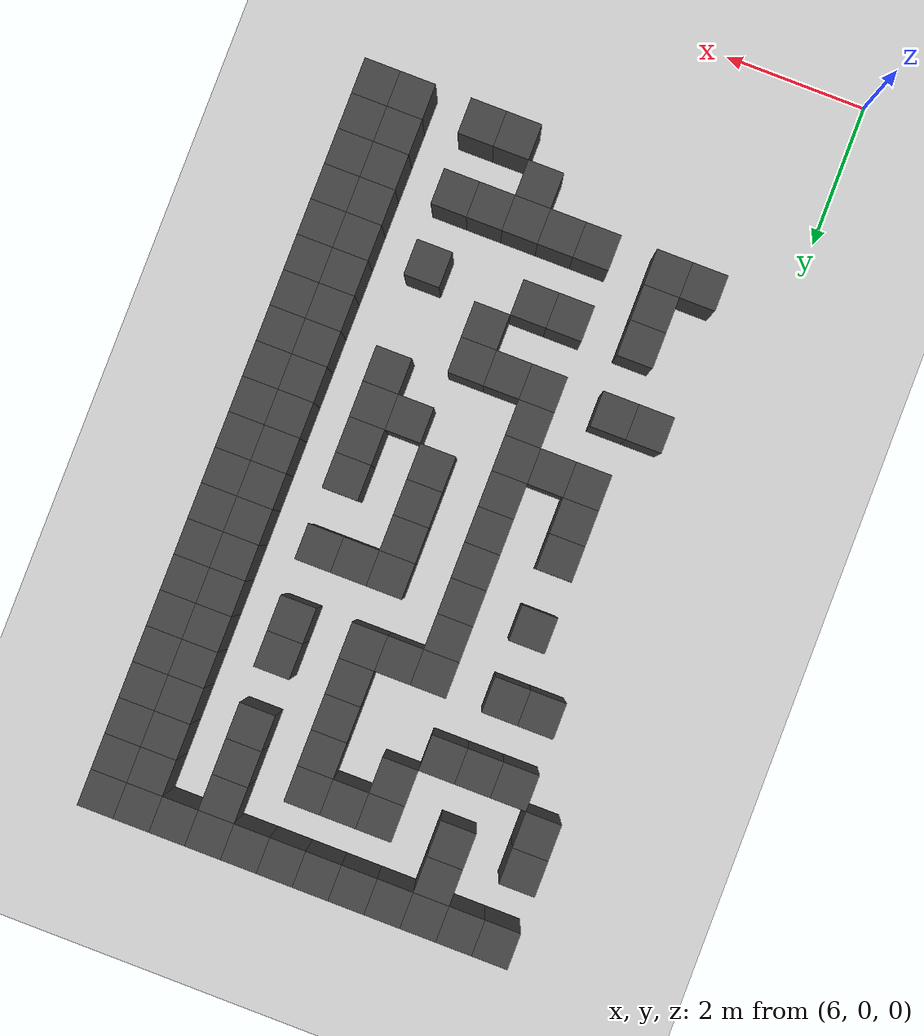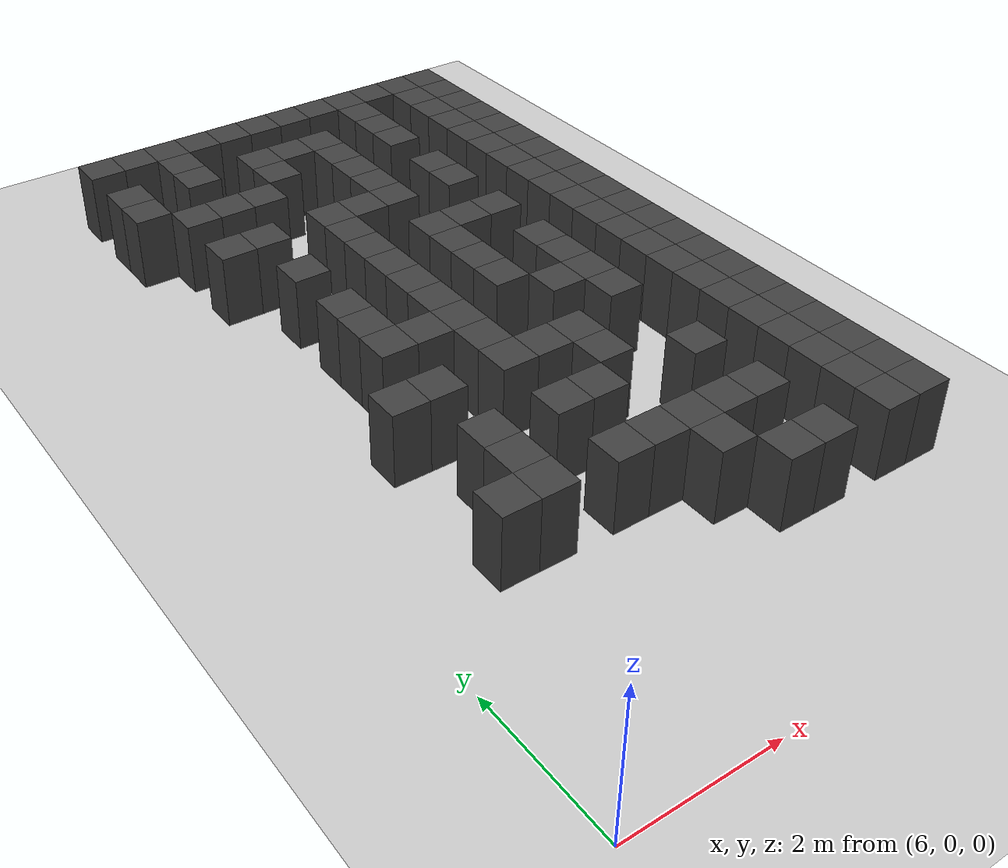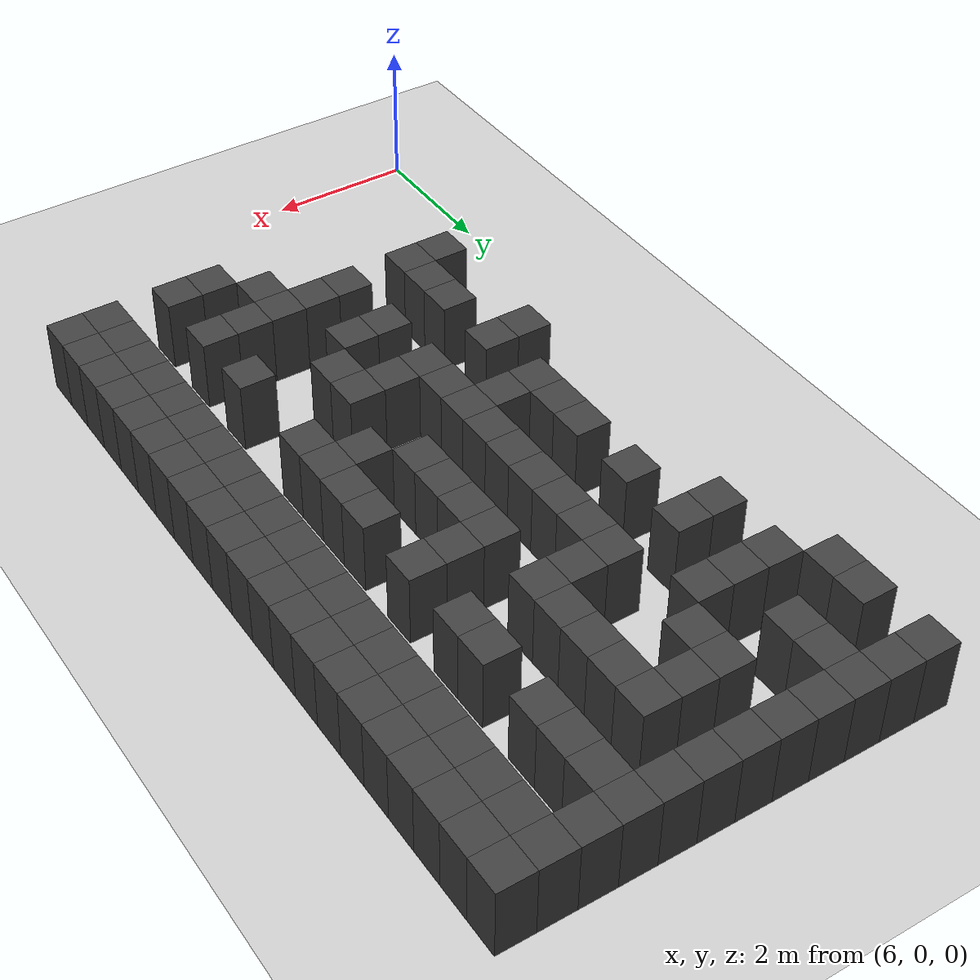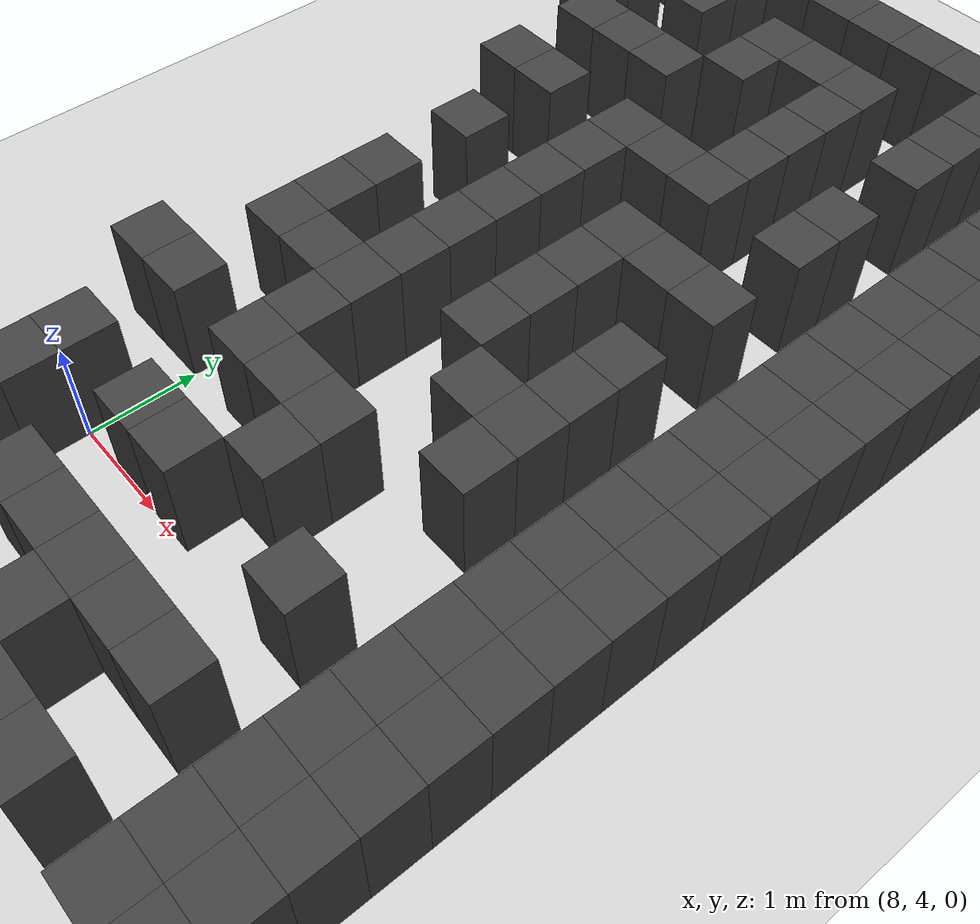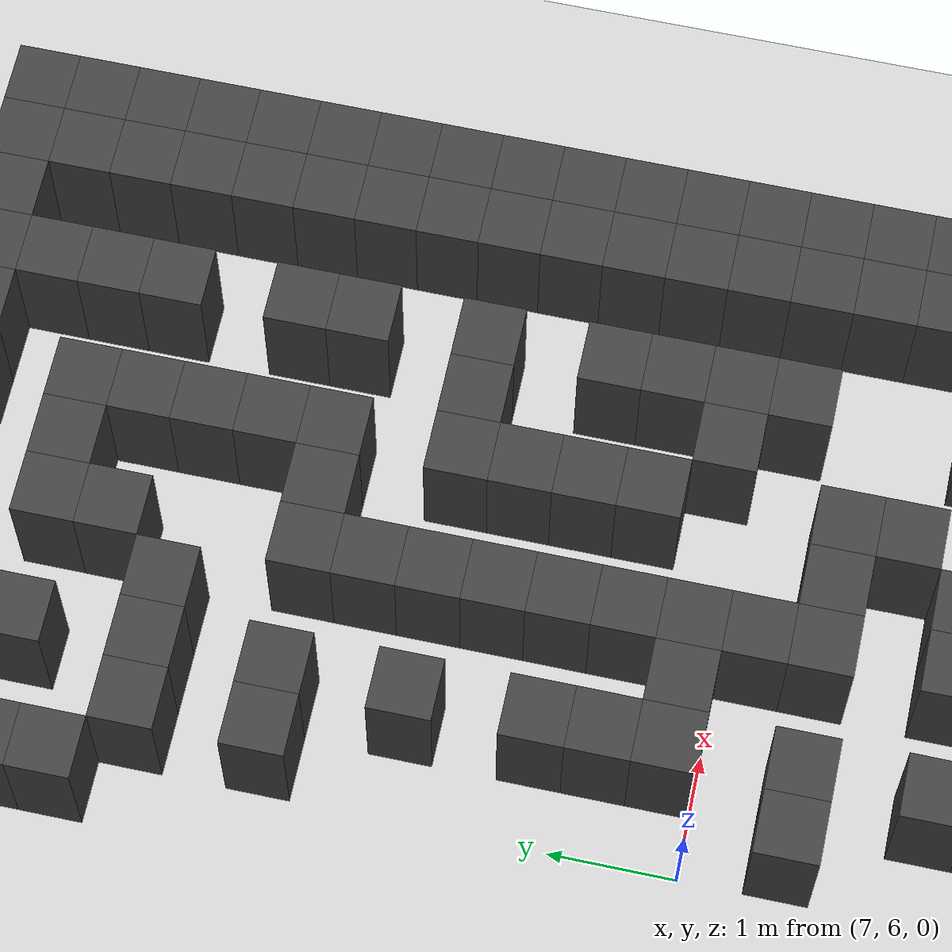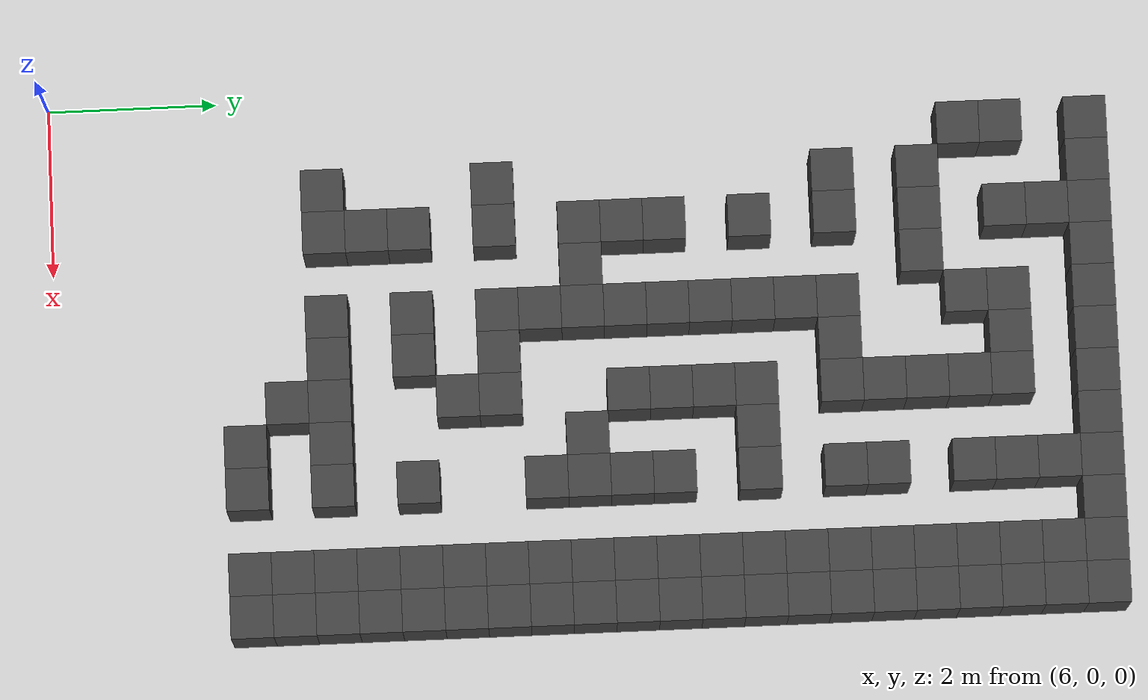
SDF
<sdf version="1.7">
 <world name="map_15168">
  <model name="ground_plane">
   <static>true</static>
   <link name="link">
    <collision name="collision">
     <geometry><plane><normal>0 0 1</normal><size>200 200</size></plane></geometry>
    </collision>
    <visual name="visual">
     <geometry><plane><normal>0 0 1</normal><size>200 200</size></plane></geometry>
     <material><ambient>0.8 0.8 0.8 1</ambient><diffuse>0.8 0.8 0.8 1</diffuse></material>
    </visual>
   </link>
  </model>
  <model name="maze_environment">
   <static>true</static>
   <link name="wall_38">
    <pose>6.750 12.250 0.500 0 0 0</pose>
    <collision name="col"><geometry><box><size>0.5 0.5 1.0</size></box></geometry></collision>
    <visual name="vis">
     <geometry><box><size>0.5 0.5 1.0</size></box></geometry>
     <material><ambient>0.15 0.15 0.15 1</ambient><diffuse>0.25 0.25 0.25 1</diffuse></material>
    </visual>
   </link>
   <link name="wall_39">
    <pose>7.250 12.250 0.500 0 0 0</pose>
    <collision name="col"><geometry><box><size>0.5 0.5 1.0</size></box></geometry></collision>
    <visual name="vis">
     <geometry><box><size>0.5 0.5 1.0</size></box></geometry>
     <material><ambient>0.15 0.15 0.15 1</ambient><diffuse>0.25 0.25 0.25 1</diffuse></material>
    </visual>
   </link>
   <link name="wall_40">
    <pose>7.750 12.250 0.500 0 0 0</pose>
    <collision name="col"><geometry><box><size>0.5 0.5 1.0</size></box></geometry></collision>
    <visual name="vis">
     <geometry><box><size>0.5 0.5 1.0</size></box></geometry>
     <material><ambient>0.15 0.15 0.15 1</ambient><diffuse>0.25 0.25 0.25 1</diffuse></material>
    </visual>
   </link>
   <link name="wall_41">
    <pose>8.250 12.250 0.500 0 0 0</pose>
    <collision name="col"><geometry><box><size>0.5 0.5 1.0</size></box></geometry></collision>
    <visual name="vis">
     <geometry><box><size>0.5 0.5 1.0</size></box></geometry>
     <material><ambient>0.15 0.15 0.15 1</ambient><diffuse>0.25 0.25 0.25 1</diffuse></material>
    </visual>
   </link>
   <link name="wall_42">
    <pose>8.750 12.250 0.500 0 0 0</pose>
    <collision name="col"><geometry><box><size>0.5 0.5 1.0</size></box></geometry></collision>
    <visual name="vis">
     <geometry><box><size>0.5 0.5 1.0</size></box></geometry>
     <material><ambient>0.15 0.15 0.15 1</ambient><diffuse>0.25 0.25 0.25 1</diffuse></material>
    </visual>
   </link>
   <link name="wall_43">
    <pose>9.250 12.250 0.500 0 0 0</pose>
    <collision name="col"><geometry><box><size>0.5 0.5 1.0</size></box></geometry></collision>
    <visual name="vis">
     <geometry><box><size>0.5 0.5 1.0</size></box></geometry>
     <material><ambient>0.15 0.15 0.15 1</ambient><diffuse>0.25 0.25 0.25 1</diffuse></material>
    </visual>
   </link>
   <link name="wall_44">
    <pose>9.750 12.250 0.500 0 0 0</pose>
    <collision name="col"><geometry><box><size>0.5 0.5 1.0</size></box></geometry></collision>
    <visual name="vis">
     <geometry><box><size>0.5 0.5 1.0</size></box></geometry>
     <material><ambient>0.15 0.15 0.15 1</ambient><diffuse>0.25 0.25 0.25 1</diffuse></material>
    </visual>
   </link>
   <link name="wall_45">
    <pose>10.250 12.250 0.500 0 0 0</pose>
    <collision name="col"><geometry><box><size>0.5 0.5 1.0</size></box></geometry></collision>
    <visual name="vis">
     <geometry><box><size>0.5 0.5 1.0</size></box></geometry>
     <material><ambient>0.15 0.15 0.15 1</ambient><diffuse>0.25 0.25 0.25 1</diffuse></material>
    </visual>
   </link>
   <link name="wall_46">
    <pose>10.750 12.250 0.500 0 0 0</pose>
    <collision name="col"><geometry><box><size>0.5 0.5 1.0</size></box></geometry></collision>
    <visual name="vis">
     <geometry><box><size>0.5 0.5 1.0</size></box></geometry>
     <material><ambient>0.15 0.15 0.15 1</ambient><diffuse>0.25 0.25 0.25 1</diffuse></material>
    </visual>
   </link>
   <link name="wall_47">
    <pose>11.250 12.250 0.500 0 0 0</pose>
    <collision name="col"><geometry><box><size>0.5 0.5 1.0</size></box></geometry></collision>
    <visual name="vis">
     <geometry><box><size>0.5 0.5 1.0</size></box></geometry>
     <material><ambient>0.15 0.15 0.15 1</ambient><diffuse>0.25 0.25 0.25 1</diffuse></material>
    </visual>
   </link>
   <link name="wall_48">
    <pose>11.750 12.250 0.500 0 0 0</pose>
    <collision name="col"><geometry><box><size>0.5 0.5 1.0</size></box></geometry></collision>
    <visual name="vis">
     <geometry><box><size>0.5 0.5 1.0</size></box></geometry>
     <material><ambient>0.15 0.15 0.15 1</ambient><diffuse>0.25 0.25 0.25 1</diffuse></material>
    </visual>
   </link>
   <link name="wall_49">
    <pose>12.250 12.250 0.500 0 0 0</pose>
    <collision name="col"><geometry><box><size>0.5 0.5 1.0</size></box></geometry></collision>
    <visual name="vis">
     <geometry><box><size>0.5 0.5 1.0</size></box></geometry>
     <material><ambient>0.15 0.15 0.15 1</ambient><diffuse>0.25 0.25 0.25 1</diffuse></material>
    </visual>
   </link>
   <link name="wall_56">
    <pose>7.750 11.750 0.500 0 0 0</pose>
    <collision name="col"><geometry><box><size>0.5 0.5 1.0</size></box></geometry></collision>
    <visual name="vis">
     <geometry><box><size>0.5 0.5 1.0</size></box></geometry>
     <material><ambient>0.15 0.15 0.15 1</ambient><diffuse>0.25 0.25 0.25 1</diffuse></material>
    </visual>
   </link>
   <link name="wall_57">
    <pose>10.750 11.750 0.500 0 0 0</pose>
    <collision name="col"><geometry><box><size>0.5 0.5 1.0</size></box></geometry></collision>
    <visual name="vis">
     <geometry><box><size>0.5 0.5 1.0</size></box></geometry>
     <material><ambient>0.15 0.15 0.15 1</ambient><diffuse>0.25 0.25 0.25 1</diffuse></material>
    </visual>
   </link>
   <link name="wall_58">
    <pose>11.750 11.750 0.500 0 0 0</pose>
    <collision name="col"><geometry><box><size>0.5 0.5 1.0</size></box></geometry></collision>
    <visual name="vis">
     <geometry><box><size>0.5 0.5 1.0</size></box></geometry>
     <material><ambient>0.15 0.15 0.15 1</ambient><diffuse>0.25 0.25 0.25 1</diffuse></material>
    </visual>
   </link>
   <link name="wall_59">
    <pose>12.250 11.750 0.500 0 0 0</pose>
    <collision name="col"><geometry><box><size>0.5 0.5 1.0</size></box></geometry></collision>
    <visual name="vis">
     <geometry><box><size>0.5 0.5 1.0</size></box></geometry>
     <material><ambient>0.15 0.15 0.15 1</ambient><diffuse>0.25 0.25 0.25 1</diffuse></material>
    </visual>
   </link>
   <link name="wall_83">
    <pose>6.750 11.250 0.500 0 0 0</pose>
    <collision name="col"><geometry><box><size>0.5 0.5 1.0</size></box></geometry></collision>
    <visual name="vis">
     <geometry><box><size>0.5 0.5 1.0</size></box></geometry>
     <material><ambient>0.15 0.15 0.15 1</ambient><diffuse>0.25 0.25 0.25 1</diffuse></material>
    </visual>
   </link>
   <link name="wall_84">
    <pose>7.750 11.250 0.500 0 0 0</pose>
    <collision name="col"><geometry><box><size>0.5 0.5 1.0</size></box></geometry></collision>
    <visual name="vis">
     <geometry><box><size>0.5 0.5 1.0</size></box></geometry>
     <material><ambient>0.15 0.15 0.15 1</ambient><diffuse>0.25 0.25 0.25 1</diffuse></material>
    </visual>
   </link>
   <link name="wall_85">
    <pose>8.750 11.250 0.500 0 0 0</pose>
    <collision name="col"><geometry><box><size>0.5 0.5 1.0</size></box></geometry></collision>
    <visual name="vis">
     <geometry><box><size>0.5 0.5 1.0</size></box></geometry>
     <material><ambient>0.15 0.15 0.15 1</ambient><diffuse>0.25 0.25 0.25 1</diffuse></material>
    </visual>
   </link>
   <link name="wall_86">
    <pose>9.250 11.250 0.500 0 0 0</pose>
    <collision name="col"><geometry><box><size>0.5 0.5 1.0</size></box></geometry></collision>
    <visual name="vis">
     <geometry><box><size>0.5 0.5 1.0</size></box></geometry>
     <material><ambient>0.15 0.15 0.15 1</ambient><diffuse>0.25 0.25 0.25 1</diffuse></material>
    </visual>
   </link>
   <link name="wall_87">
    <pose>9.750 11.250 0.500 0 0 0</pose>
    <collision name="col"><geometry><box><size>0.5 0.5 1.0</size></box></geometry></collision>
    <visual name="vis">
     <geometry><box><size>0.5 0.5 1.0</size></box></geometry>
     <material><ambient>0.15 0.15 0.15 1</ambient><diffuse>0.25 0.25 0.25 1</diffuse></material>
    </visual>
   </link>
   <link name="wall_88">
    <pose>10.750 11.250 0.500 0 0 0</pose>
    <collision name="col"><geometry><box><size>0.5 0.5 1.0</size></box></geometry></collision>
    <visual name="vis">
     <geometry><box><size>0.5 0.5 1.0</size></box></geometry>
     <material><ambient>0.15 0.15 0.15 1</ambient><diffuse>0.25 0.25 0.25 1</diffuse></material>
    </visual>
   </link>
   <link name="wall_89">
    <pose>11.750 11.250 0.500 0 0 0</pose>
    <collision name="col"><geometry><box><size>0.5 0.5 1.0</size></box></geometry></collision>
    <visual name="vis">
     <geometry><box><size>0.5 0.5 1.0</size></box></geometry>
     <material><ambient>0.15 0.15 0.15 1</ambient><diffuse>0.25 0.25 0.25 1</diffuse></material>
    </visual>
   </link>
   <link name="wall_90">
    <pose>12.250 11.250 0.500 0 0 0</pose>
    <collision name="col"><geometry><box><size>0.5 0.5 1.0</size></box></geometry></collision>
    <visual name="vis">
     <geometry><box><size>0.5 0.5 1.0</size></box></geometry>
     <material><ambient>0.15 0.15 0.15 1</ambient><diffuse>0.25 0.25 0.25 1</diffuse></material>
    </visual>
   </link>
   <link name="wall_99">
    <pose>6.750 10.750 0.500 0 0 0</pose>
    <collision name="col"><geometry><box><size>0.5 0.5 1.0</size></box></geometry></collision>
    <visual name="vis">
     <geometry><box><size>0.5 0.5 1.0</size></box></geometry>
     <material><ambient>0.15 0.15 0.15 1</ambient><diffuse>0.25 0.25 0.25 1</diffuse></material>
    </visual>
   </link>
   <link name="wall_100">
    <pose>8.750 10.750 0.500 0 0 0</pose>
    <collision name="col"><geometry><box><size>0.5 0.5 1.0</size></box></geometry></collision>
    <visual name="vis">
     <geometry><box><size>0.5 0.5 1.0</size></box></geometry>
     <material><ambient>0.15 0.15 0.15 1</ambient><diffuse>0.25 0.25 0.25 1</diffuse></material>
    </visual>
   </link>
   <link name="wall_101">
    <pose>9.750 10.750 0.500 0 0 0</pose>
    <collision name="col"><geometry><box><size>0.5 0.5 1.0</size></box></geometry></collision>
    <visual name="vis">
     <geometry><box><size>0.5 0.5 1.0</size></box></geometry>
     <material><ambient>0.15 0.15 0.15 1</ambient><diffuse>0.25 0.25 0.25 1</diffuse></material>
    </visual>
   </link>
   <link name="wall_102">
    <pose>10.750 10.750 0.500 0 0 0</pose>
    <collision name="col"><geometry><box><size>0.5 0.5 1.0</size></box></geometry></collision>
    <visual name="vis">
     <geometry><box><size>0.5 0.5 1.0</size></box></geometry>
     <material><ambient>0.15 0.15 0.15 1</ambient><diffuse>0.25 0.25 0.25 1</diffuse></material>
    </visual>
   </link>
   <link name="wall_103">
    <pose>11.750 10.750 0.500 0 0 0</pose>
    <collision name="col"><geometry><box><size>0.5 0.5 1.0</size></box></geometry></collision>
    <visual name="vis">
     <geometry><box><size>0.5 0.5 1.0</size></box></geometry>
     <material><ambient>0.15 0.15 0.15 1</ambient><diffuse>0.25 0.25 0.25 1</diffuse></material>
    </visual>
   </link>
   <link name="wall_104">
    <pose>12.250 10.750 0.500 0 0 0</pose>
    <collision name="col"><geometry><box><size>0.5 0.5 1.0</size></box></geometry></collision>
    <visual name="vis">
     <geometry><box><size>0.5 0.5 1.0</size></box></geometry>
     <material><ambient>0.15 0.15 0.15 1</ambient><diffuse>0.25 0.25 0.25 1</diffuse></material>
    </visual>
   </link>
   <link name="wall_133">
    <pose>7.250 10.250 0.500 0 0 0</pose>
    <collision name="col"><geometry><box><size>0.5 0.5 1.0</size></box></geometry></collision>
    <visual name="vis">
     <geometry><box><size>0.5 0.5 1.0</size></box></geometry>
     <material><ambient>0.15 0.15 0.15 1</ambient><diffuse>0.25 0.25 0.25 1</diffuse></material>
    </visual>
   </link>
   <link name="wall_134">
    <pose>7.750 10.250 0.500 0 0 0</pose>
    <collision name="col"><geometry><box><size>0.5 0.5 1.0</size></box></geometry></collision>
    <visual name="vis">
     <geometry><box><size>0.5 0.5 1.0</size></box></geometry>
     <material><ambient>0.15 0.15 0.15 1</ambient><diffuse>0.25 0.25 0.25 1</diffuse></material>
    </visual>
   </link>
   <link name="wall_135">
    <pose>8.250 10.250 0.500 0 0 0</pose>
    <collision name="col"><geometry><box><size>0.5 0.5 1.0</size></box></geometry></collision>
    <visual name="vis">
     <geometry><box><size>0.5 0.5 1.0</size></box></geometry>
     <material><ambient>0.15 0.15 0.15 1</ambient><diffuse>0.25 0.25 0.25 1</diffuse></material>
    </visual>
   </link>
   <link name="wall_136">
    <pose>9.750 10.250 0.500 0 0 0</pose>
    <collision name="col"><geometry><box><size>0.5 0.5 1.0</size></box></geometry></collision>
    <visual name="vis">
     <geometry><box><size>0.5 0.5 1.0</size></box></geometry>
     <material><ambient>0.15 0.15 0.15 1</ambient><diffuse>0.25 0.25 0.25 1</diffuse></material>
    </visual>
   </link>
   <link name="wall_137">
    <pose>11.750 10.250 0.500 0 0 0</pose>
    <collision name="col"><geometry><box><size>0.5 0.5 1.0</size></box></geometry></collision>
    <visual name="vis">
     <geometry><box><size>0.5 0.5 1.0</size></box></geometry>
     <material><ambient>0.15 0.15 0.15 1</ambient><diffuse>0.25 0.25 0.25 1</diffuse></material>
    </visual>
   </link>
   <link name="wall_138">
    <pose>12.250 10.250 0.500 0 0 0</pose>
    <collision name="col"><geometry><box><size>0.5 0.5 1.0</size></box></geometry></collision>
    <visual name="vis">
     <geometry><box><size>0.5 0.5 1.0</size></box></geometry>
     <material><ambient>0.15 0.15 0.15 1</ambient><diffuse>0.25 0.25 0.25 1</diffuse></material>
    </visual>
   </link>
   <link name="wall_148">
    <pose>9.750 9.750 0.500 0 0 0</pose>
    <collision name="col"><geometry><box><size>0.5 0.5 1.0</size></box></geometry></collision>
    <visual name="vis">
     <geometry><box><size>0.5 0.5 1.0</size></box></geometry>
     <material><ambient>0.15 0.15 0.15 1</ambient><diffuse>0.25 0.25 0.25 1</diffuse></material>
    </visual>
   </link>
   <link name="wall_149">
    <pose>10.750 9.750 0.500 0 0 0</pose>
    <collision name="col"><geometry><box><size>0.5 0.5 1.0</size></box></geometry></collision>
    <visual name="vis">
     <geometry><box><size>0.5 0.5 1.0</size></box></geometry>
     <material><ambient>0.15 0.15 0.15 1</ambient><diffuse>0.25 0.25 0.25 1</diffuse></material>
    </visual>
   </link>
   <link name="wall_150">
    <pose>11.750 9.750 0.500 0 0 0</pose>
    <collision name="col"><geometry><box><size>0.5 0.5 1.0</size></box></geometry></collision>
    <visual name="vis">
     <geometry><box><size>0.5 0.5 1.0</size></box></geometry>
     <material><ambient>0.15 0.15 0.15 1</ambient><diffuse>0.25 0.25 0.25 1</diffuse></material>
    </visual>
   </link>
   <link name="wall_151">
    <pose>12.250 9.750 0.500 0 0 0</pose>
    <collision name="col"><geometry><box><size>0.5 0.5 1.0</size></box></geometry></collision>
    <visual name="vis">
     <geometry><box><size>0.5 0.5 1.0</size></box></geometry>
     <material><ambient>0.15 0.15 0.15 1</ambient><diffuse>0.25 0.25 0.25 1</diffuse></material>
    </visual>
   </link>
   <link name="wall_181">
    <pose>7.250 9.250 0.500 0 0 0</pose>
    <collision name="col"><geometry><box><size>0.5 0.5 1.0</size></box></geometry></collision>
    <visual name="vis">
     <geometry><box><size>0.5 0.5 1.0</size></box></geometry>
     <material><ambient>0.15 0.15 0.15 1</ambient><diffuse>0.25 0.25 0.25 1</diffuse></material>
    </visual>
   </link>
   <link name="wall_182">
    <pose>7.750 9.250 0.500 0 0 0</pose>
    <collision name="col"><geometry><box><size>0.5 0.5 1.0</size></box></geometry></collision>
    <visual name="vis">
     <geometry><box><size>0.5 0.5 1.0</size></box></geometry>
     <material><ambient>0.15 0.15 0.15 1</ambient><diffuse>0.25 0.25 0.25 1</diffuse></material>
    </visual>
   </link>
   <link name="wall_183">
    <pose>8.750 9.250 0.500 0 0 0</pose>
    <collision name="col"><geometry><box><size>0.5 0.5 1.0</size></box></geometry></collision>
    <visual name="vis">
     <geometry><box><size>0.5 0.5 1.0</size></box></geometry>
     <material><ambient>0.15 0.15 0.15 1</ambient><diffuse>0.25 0.25 0.25 1</diffuse></material>
    </visual>
   </link>
   <link name="wall_184">
    <pose>9.250 9.250 0.500 0 0 0</pose>
    <collision name="col"><geometry><box><size>0.5 0.5 1.0</size></box></geometry></collision>
    <visual name="vis">
     <geometry><box><size>0.5 0.5 1.0</size></box></geometry>
     <material><ambient>0.15 0.15 0.15 1</ambient><diffuse>0.25 0.25 0.25 1</diffuse></material>
    </visual>
   </link>
   <link name="wall_185">
    <pose>9.750 9.250 0.500 0 0 0</pose>
    <collision name="col"><geometry><box><size>0.5 0.5 1.0</size></box></geometry></collision>
    <visual name="vis">
     <geometry><box><size>0.5 0.5 1.0</size></box></geometry>
     <material><ambient>0.15 0.15 0.15 1</ambient><diffuse>0.25 0.25 0.25 1</diffuse></material>
    </visual>
   </link>
   <link name="wall_186">
    <pose>10.750 9.250 0.500 0 0 0</pose>
    <collision name="col"><geometry><box><size>0.5 0.5 1.0</size></box></geometry></collision>
    <visual name="vis">
     <geometry><box><size>0.5 0.5 1.0</size></box></geometry>
     <material><ambient>0.15 0.15 0.15 1</ambient><diffuse>0.25 0.25 0.25 1</diffuse></material>
    </visual>
   </link>
   <link name="wall_187">
    <pose>11.750 9.250 0.500 0 0 0</pose>
    <collision name="col"><geometry><box><size>0.5 0.5 1.0</size></box></geometry></collision>
    <visual name="vis">
     <geometry><box><size>0.5 0.5 1.0</size></box></geometry>
     <material><ambient>0.15 0.15 0.15 1</ambient><diffuse>0.25 0.25 0.25 1</diffuse></material>
    </visual>
   </link>
   <link name="wall_188">
    <pose>12.250 9.250 0.500 0 0 0</pose>
    <collision name="col"><geometry><box><size>0.5 0.5 1.0</size></box></geometry></collision>
    <visual name="vis">
     <geometry><box><size>0.5 0.5 1.0</size></box></geometry>
     <material><ambient>0.15 0.15 0.15 1</ambient><diffuse>0.25 0.25 0.25 1</diffuse></material>
    </visual>
   </link>
   <link name="wall_197">
    <pose>8.750 8.750 0.500 0 0 0</pose>
    <collision name="col"><geometry><box><size>0.5 0.5 1.0</size></box></geometry></collision>
    <visual name="vis">
     <geometry><box><size>0.5 0.5 1.0</size></box></geometry>
     <material><ambient>0.15 0.15 0.15 1</ambient><diffuse>0.25 0.25 0.25 1</diffuse></material>
    </visual>
   </link>
   <link name="wall_198">
    <pose>11.750 8.750 0.500 0 0 0</pose>
    <collision name="col"><geometry><box><size>0.5 0.5 1.0</size></box></geometry></collision>
    <visual name="vis">
     <geometry><box><size>0.5 0.5 1.0</size></box></geometry>
     <material><ambient>0.15 0.15 0.15 1</ambient><diffuse>0.25 0.25 0.25 1</diffuse></material>
    </visual>
   </link>
   <link name="wall_199">
    <pose>12.250 8.750 0.500 0 0 0</pose>
    <collision name="col"><geometry><box><size>0.5 0.5 1.0</size></box></geometry></collision>
    <visual name="vis">
     <geometry><box><size>0.5 0.5 1.0</size></box></geometry>
     <material><ambient>0.15 0.15 0.15 1</ambient><diffuse>0.25 0.25 0.25 1</diffuse></material>
    </visual>
   </link>
   <link name="wall_225">
    <pose>7.750 8.250 0.500 0 0 0</pose>
    <collision name="col"><geometry><box><size>0.5 0.5 1.0</size></box></geometry></collision>
    <visual name="vis">
     <geometry><box><size>0.5 0.5 1.0</size></box></geometry>
     <material><ambient>0.15 0.15 0.15 1</ambient><diffuse>0.25 0.25 0.25 1</diffuse></material>
    </visual>
   </link>
   <link name="wall_226">
    <pose>8.750 8.250 0.500 0 0 0</pose>
    <collision name="col"><geometry><box><size>0.5 0.5 1.0</size></box></geometry></collision>
    <visual name="vis">
     <geometry><box><size>0.5 0.5 1.0</size></box></geometry>
     <material><ambient>0.15 0.15 0.15 1</ambient><diffuse>0.25 0.25 0.25 1</diffuse></material>
    </visual>
   </link>
   <link name="wall_227">
    <pose>9.750 8.250 0.500 0 0 0</pose>
    <collision name="col"><geometry><box><size>0.5 0.5 1.0</size></box></geometry></collision>
    <visual name="vis">
     <geometry><box><size>0.5 0.5 1.0</size></box></geometry>
     <material><ambient>0.15 0.15 0.15 1</ambient><diffuse>0.25 0.25 0.25 1</diffuse></material>
    </visual>
   </link>
   <link name="wall_228">
    <pose>10.250 8.250 0.500 0 0 0</pose>
    <collision name="col"><geometry><box><size>0.5 0.5 1.0</size></box></geometry></collision>
    <visual name="vis">
     <geometry><box><size>0.5 0.5 1.0</size></box></geometry>
     <material><ambient>0.15 0.15 0.15 1</ambient><diffuse>0.25 0.25 0.25 1</diffuse></material>
    </visual>
   </link>
   <link name="wall_229">
    <pose>10.750 8.250 0.500 0 0 0</pose>
    <collision name="col"><geometry><box><size>0.5 0.5 1.0</size></box></geometry></collision>
    <visual name="vis">
     <geometry><box><size>0.5 0.5 1.0</size></box></geometry>
     <material><ambient>0.15 0.15 0.15 1</ambient><diffuse>0.25 0.25 0.25 1</diffuse></material>
    </visual>
   </link>
   <link name="wall_230">
    <pose>11.750 8.250 0.500 0 0 0</pose>
    <collision name="col"><geometry><box><size>0.5 0.5 1.0</size></box></geometry></collision>
    <visual name="vis">
     <geometry><box><size>0.5 0.5 1.0</size></box></geometry>
     <material><ambient>0.15 0.15 0.15 1</ambient><diffuse>0.25 0.25 0.25 1</diffuse></material>
    </visual>
   </link>
   <link name="wall_231">
    <pose>12.250 8.250 0.500 0 0 0</pose>
    <collision name="col"><geometry><box><size>0.5 0.5 1.0</size></box></geometry></collision>
    <visual name="vis">
     <geometry><box><size>0.5 0.5 1.0</size></box></geometry>
     <material><ambient>0.15 0.15 0.15 1</ambient><diffuse>0.25 0.25 0.25 1</diffuse></material>
    </visual>
   </link>
   <link name="wall_241">
    <pose>8.750 7.750 0.500 0 0 0</pose>
    <collision name="col"><geometry><box><size>0.5 0.5 1.0</size></box></geometry></collision>
    <visual name="vis">
     <geometry><box><size>0.5 0.5 1.0</size></box></geometry>
     <material><ambient>0.15 0.15 0.15 1</ambient><diffuse>0.25 0.25 0.25 1</diffuse></material>
    </visual>
   </link>
   <link name="wall_242">
    <pose>9.750 7.750 0.500 0 0 0</pose>
    <collision name="col"><geometry><box><size>0.5 0.5 1.0</size></box></geometry></collision>
    <visual name="vis">
     <geometry><box><size>0.5 0.5 1.0</size></box></geometry>
     <material><ambient>0.15 0.15 0.15 1</ambient><diffuse>0.25 0.25 0.25 1</diffuse></material>
    </visual>
   </link>
   <link name="wall_243">
    <pose>11.750 7.750 0.500 0 0 0</pose>
    <collision name="col"><geometry><box><size>0.5 0.5 1.0</size></box></geometry></collision>
    <visual name="vis">
     <geometry><box><size>0.5 0.5 1.0</size></box></geometry>
     <material><ambient>0.15 0.15 0.15 1</ambient><diffuse>0.25 0.25 0.25 1</diffuse></material>
    </visual>
   </link>
   <link name="wall_244">
    <pose>12.250 7.750 0.500 0 0 0</pose>
    <collision name="col"><geometry><box><size>0.5 0.5 1.0</size></box></geometry></collision>
    <visual name="vis">
     <geometry><box><size>0.5 0.5 1.0</size></box></geometry>
     <material><ambient>0.15 0.15 0.15 1</ambient><diffuse>0.25 0.25 0.25 1</diffuse></material>
    </visual>
   </link>
   <link name="wall_271">
    <pose>7.750 7.250 0.500 0 0 0</pose>
    <collision name="col"><geometry><box><size>0.5 0.5 1.0</size></box></geometry></collision>
    <visual name="vis">
     <geometry><box><size>0.5 0.5 1.0</size></box></geometry>
     <material><ambient>0.15 0.15 0.15 1</ambient><diffuse>0.25 0.25 0.25 1</diffuse></material>
    </visual>
   </link>
   <link name="wall_272">
    <pose>8.750 7.250 0.500 0 0 0</pose>
    <collision name="col"><geometry><box><size>0.5 0.5 1.0</size></box></geometry></collision>
    <visual name="vis">
     <geometry><box><size>0.5 0.5 1.0</size></box></geometry>
     <material><ambient>0.15 0.15 0.15 1</ambient><diffuse>0.25 0.25 0.25 1</diffuse></material>
    </visual>
   </link>
   <link name="wall_273">
    <pose>9.750 7.250 0.500 0 0 0</pose>
    <collision name="col"><geometry><box><size>0.5 0.5 1.0</size></box></geometry></collision>
    <visual name="vis">
     <geometry><box><size>0.5 0.5 1.0</size></box></geometry>
     <material><ambient>0.15 0.15 0.15 1</ambient><diffuse>0.25 0.25 0.25 1</diffuse></material>
    </visual>
   </link>
   <link name="wall_274">
    <pose>10.750 7.250 0.500 0 0 0</pose>
    <collision name="col"><geometry><box><size>0.5 0.5 1.0</size></box></geometry></collision>
    <visual name="vis">
     <geometry><box><size>0.5 0.5 1.0</size></box></geometry>
     <material><ambient>0.15 0.15 0.15 1</ambient><diffuse>0.25 0.25 0.25 1</diffuse></material>
    </visual>
   </link>
   <link name="wall_275">
    <pose>11.750 7.250 0.500 0 0 0</pose>
    <collision name="col"><geometry><box><size>0.5 0.5 1.0</size></box></geometry></collision>
    <visual name="vis">
     <geometry><box><size>0.5 0.5 1.0</size></box></geometry>
     <material><ambient>0.15 0.15 0.15 1</ambient><diffuse>0.25 0.25 0.25 1</diffuse></material>
    </visual>
   </link>
   <link name="wall_276">
    <pose>12.250 7.250 0.500 0 0 0</pose>
    <collision name="col"><geometry><box><size>0.5 0.5 1.0</size></box></geometry></collision>
    <visual name="vis">
     <geometry><box><size>0.5 0.5 1.0</size></box></geometry>
     <material><ambient>0.15 0.15 0.15 1</ambient><diffuse>0.25 0.25 0.25 1</diffuse></material>
    </visual>
   </link>
   <link name="wall_285">
    <pose>7.750 6.750 0.500 0 0 0</pose>
    <collision name="col"><geometry><box><size>0.5 0.5 1.0</size></box></geometry></collision>
    <visual name="vis">
     <geometry><box><size>0.5 0.5 1.0</size></box></geometry>
     <material><ambient>0.15 0.15 0.15 1</ambient><diffuse>0.25 0.25 0.25 1</diffuse></material>
    </visual>
   </link>
   <link name="wall_286">
    <pose>8.750 6.750 0.500 0 0 0</pose>
    <collision name="col"><geometry><box><size>0.5 0.5 1.0</size></box></geometry></collision>
    <visual name="vis">
     <geometry><box><size>0.5 0.5 1.0</size></box></geometry>
     <material><ambient>0.15 0.15 0.15 1</ambient><diffuse>0.25 0.25 0.25 1</diffuse></material>
    </visual>
   </link>
   <link name="wall_287">
    <pose>9.750 6.750 0.500 0 0 0</pose>
    <collision name="col"><geometry><box><size>0.5 0.5 1.0</size></box></geometry></collision>
    <visual name="vis">
     <geometry><box><size>0.5 0.5 1.0</size></box></geometry>
     <material><ambient>0.15 0.15 0.15 1</ambient><diffuse>0.25 0.25 0.25 1</diffuse></material>
    </visual>
   </link>
   <link name="wall_288">
    <pose>10.750 6.750 0.500 0 0 0</pose>
    <collision name="col"><geometry><box><size>0.5 0.5 1.0</size></box></geometry></collision>
    <visual name="vis">
     <geometry><box><size>0.5 0.5 1.0</size></box></geometry>
     <material><ambient>0.15 0.15 0.15 1</ambient><diffuse>0.25 0.25 0.25 1</diffuse></material>
    </visual>
   </link>
   <link name="wall_289">
    <pose>11.750 6.750 0.500 0 0 0</pose>
    <collision name="col"><geometry><box><size>0.5 0.5 1.0</size></box></geometry></collision>
    <visual name="vis">
     <geometry><box><size>0.5 0.5 1.0</size></box></geometry>
     <material><ambient>0.15 0.15 0.15 1</ambient><diffuse>0.25 0.25 0.25 1</diffuse></material>
    </visual>
   </link>
   <link name="wall_290">
    <pose>12.250 6.750 0.500 0 0 0</pose>
    <collision name="col"><geometry><box><size>0.5 0.5 1.0</size></box></geometry></collision>
    <visual name="vis">
     <geometry><box><size>0.5 0.5 1.0</size></box></geometry>
     <material><ambient>0.15 0.15 0.15 1</ambient><diffuse>0.25 0.25 0.25 1</diffuse></material>
    </visual>
   </link>
   <link name="wall_315">
    <pose>7.750 6.250 0.500 0 0 0</pose>
    <collision name="col"><geometry><box><size>0.5 0.5 1.0</size></box></geometry></collision>
    <visual name="vis">
     <geometry><box><size>0.5 0.5 1.0</size></box></geometry>
     <material><ambient>0.15 0.15 0.15 1</ambient><diffuse>0.25 0.25 0.25 1</diffuse></material>
    </visual>
   </link>
   <link name="wall_316">
    <pose>8.250 6.250 0.500 0 0 0</pose>
    <collision name="col"><geometry><box><size>0.5 0.5 1.0</size></box></geometry></collision>
    <visual name="vis">
     <geometry><box><size>0.5 0.5 1.0</size></box></geometry>
     <material><ambient>0.15 0.15 0.15 1</ambient><diffuse>0.25 0.25 0.25 1</diffuse></material>
    </visual>
   </link>
   <link name="wall_317">
    <pose>8.750 6.250 0.500 0 0 0</pose>
    <collision name="col"><geometry><box><size>0.5 0.5 1.0</size></box></geometry></collision>
    <visual name="vis">
     <geometry><box><size>0.5 0.5 1.0</size></box></geometry>
     <material><ambient>0.15 0.15 0.15 1</ambient><diffuse>0.25 0.25 0.25 1</diffuse></material>
    </visual>
   </link>
   <link name="wall_318">
    <pose>10.250 6.250 0.500 0 0 0</pose>
    <collision name="col"><geometry><box><size>0.5 0.5 1.0</size></box></geometry></collision>
    <visual name="vis">
     <geometry><box><size>0.5 0.5 1.0</size></box></geometry>
     <material><ambient>0.15 0.15 0.15 1</ambient><diffuse>0.25 0.25 0.25 1</diffuse></material>
    </visual>
   </link>
   <link name="wall_319">
    <pose>10.750 6.250 0.500 0 0 0</pose>
    <collision name="col"><geometry><box><size>0.5 0.5 1.0</size></box></geometry></collision>
    <visual name="vis">
     <geometry><box><size>0.5 0.5 1.0</size></box></geometry>
     <material><ambient>0.15 0.15 0.15 1</ambient><diffuse>0.25 0.25 0.25 1</diffuse></material>
    </visual>
   </link>
   <link name="wall_320">
    <pose>11.750 6.250 0.500 0 0 0</pose>
    <collision name="col"><geometry><box><size>0.5 0.5 1.0</size></box></geometry></collision>
    <visual name="vis">
     <geometry><box><size>0.5 0.5 1.0</size></box></geometry>
     <material><ambient>0.15 0.15 0.15 1</ambient><diffuse>0.25 0.25 0.25 1</diffuse></material>
    </visual>
   </link>
   <link name="wall_321">
    <pose>12.250 6.250 0.500 0 0 0</pose>
    <collision name="col"><geometry><box><size>0.5 0.5 1.0</size></box></geometry></collision>
    <visual name="vis">
     <geometry><box><size>0.5 0.5 1.0</size></box></geometry>
     <material><ambient>0.15 0.15 0.15 1</ambient><diffuse>0.25 0.25 0.25 1</diffuse></material>
    </visual>
   </link>
   <link name="wall_330">
    <pose>8.750 5.750 0.500 0 0 0</pose>
    <collision name="col"><geometry><box><size>0.5 0.5 1.0</size></box></geometry></collision>
    <visual name="vis">
     <geometry><box><size>0.5 0.5 1.0</size></box></geometry>
     <material><ambient>0.15 0.15 0.15 1</ambient><diffuse>0.25 0.25 0.25 1</diffuse></material>
    </visual>
   </link>
   <link name="wall_331">
    <pose>10.750 5.750 0.500 0 0 0</pose>
    <collision name="col"><geometry><box><size>0.5 0.5 1.0</size></box></geometry></collision>
    <visual name="vis">
     <geometry><box><size>0.5 0.5 1.0</size></box></geometry>
     <material><ambient>0.15 0.15 0.15 1</ambient><diffuse>0.25 0.25 0.25 1</diffuse></material>
    </visual>
   </link>
   <link name="wall_332">
    <pose>11.750 5.750 0.500 0 0 0</pose>
    <collision name="col"><geometry><box><size>0.5 0.5 1.0</size></box></geometry></collision>
    <visual name="vis">
     <geometry><box><size>0.5 0.5 1.0</size></box></geometry>
     <material><ambient>0.15 0.15 0.15 1</ambient><diffuse>0.25 0.25 0.25 1</diffuse></material>
    </visual>
   </link>
   <link name="wall_333">
    <pose>12.250 5.750 0.500 0 0 0</pose>
    <collision name="col"><geometry><box><size>0.5 0.5 1.0</size></box></geometry></collision>
    <visual name="vis">
     <geometry><box><size>0.5 0.5 1.0</size></box></geometry>
     <material><ambient>0.15 0.15 0.15 1</ambient><diffuse>0.25 0.25 0.25 1</diffuse></material>
    </visual>
   </link>
   <link name="wall_364">
    <pose>7.250 5.250 0.500 0 0 0</pose>
    <collision name="col"><geometry><box><size>0.5 0.5 1.0</size></box></geometry></collision>
    <visual name="vis">
     <geometry><box><size>0.5 0.5 1.0</size></box></geometry>
     <material><ambient>0.15 0.15 0.15 1</ambient><diffuse>0.25 0.25 0.25 1</diffuse></material>
    </visual>
   </link>
   <link name="wall_365">
    <pose>7.750 5.250 0.500 0 0 0</pose>
    <collision name="col"><geometry><box><size>0.5 0.5 1.0</size></box></geometry></collision>
    <visual name="vis">
     <geometry><box><size>0.5 0.5 1.0</size></box></geometry>
     <material><ambient>0.15 0.15 0.15 1</ambient><diffuse>0.25 0.25 0.25 1</diffuse></material>
    </visual>
   </link>
   <link name="wall_366">
    <pose>8.750 5.250 0.500 0 0 0</pose>
    <collision name="col"><geometry><box><size>0.5 0.5 1.0</size></box></geometry></collision>
    <visual name="vis">
     <geometry><box><size>0.5 0.5 1.0</size></box></geometry>
     <material><ambient>0.15 0.15 0.15 1</ambient><diffuse>0.25 0.25 0.25 1</diffuse></material>
    </visual>
   </link>
   <link name="wall_367">
    <pose>9.250 5.250 0.500 0 0 0</pose>
    <collision name="col"><geometry><box><size>0.5 0.5 1.0</size></box></geometry></collision>
    <visual name="vis">
     <geometry><box><size>0.5 0.5 1.0</size></box></geometry>
     <material><ambient>0.15 0.15 0.15 1</ambient><diffuse>0.25 0.25 0.25 1</diffuse></material>
    </visual>
   </link>
   <link name="wall_368">
    <pose>9.750 5.250 0.500 0 0 0</pose>
    <collision name="col"><geometry><box><size>0.5 0.5 1.0</size></box></geometry></collision>
    <visual name="vis">
     <geometry><box><size>0.5 0.5 1.0</size></box></geometry>
     <material><ambient>0.15 0.15 0.15 1</ambient><diffuse>0.25 0.25 0.25 1</diffuse></material>
    </visual>
   </link>
   <link name="wall_369">
    <pose>11.750 5.250 0.500 0 0 0</pose>
    <collision name="col"><geometry><box><size>0.5 0.5 1.0</size></box></geometry></collision>
    <visual name="vis">
     <geometry><box><size>0.5 0.5 1.0</size></box></geometry>
     <material><ambient>0.15 0.15 0.15 1</ambient><diffuse>0.25 0.25 0.25 1</diffuse></material>
    </visual>
   </link>
   <link name="wall_370">
    <pose>12.250 5.250 0.500 0 0 0</pose>
    <collision name="col"><geometry><box><size>0.5 0.5 1.0</size></box></geometry></collision>
    <visual name="vis">
     <geometry><box><size>0.5 0.5 1.0</size></box></geometry>
     <material><ambient>0.15 0.15 0.15 1</ambient><diffuse>0.25 0.25 0.25 1</diffuse></material>
    </visual>
   </link>
   <link name="wall_376">
    <pose>9.750 4.750 0.500 0 0 0</pose>
    <collision name="col"><geometry><box><size>0.5 0.5 1.0</size></box></geometry></collision>
    <visual name="vis">
     <geometry><box><size>0.5 0.5 1.0</size></box></geometry>
     <material><ambient>0.15 0.15 0.15 1</ambient><diffuse>0.25 0.25 0.25 1</diffuse></material>
    </visual>
   </link>
   <link name="wall_377">
    <pose>11.750 4.750 0.500 0 0 0</pose>
    <collision name="col"><geometry><box><size>0.5 0.5 1.0</size></box></geometry></collision>
    <visual name="vis">
     <geometry><box><size>0.5 0.5 1.0</size></box></geometry>
     <material><ambient>0.15 0.15 0.15 1</ambient><diffuse>0.25 0.25 0.25 1</diffuse></material>
    </visual>
   </link>
   <link name="wall_378">
    <pose>12.250 4.750 0.500 0 0 0</pose>
    <collision name="col"><geometry><box><size>0.5 0.5 1.0</size></box></geometry></collision>
    <visual name="vis">
     <geometry><box><size>0.5 0.5 1.0</size></box></geometry>
     <material><ambient>0.15 0.15 0.15 1</ambient><diffuse>0.25 0.25 0.25 1</diffuse></material>
    </visual>
   </link>
   <link name="wall_407">
    <pose>7.750 4.250 0.500 0 0 0</pose>
    <collision name="col"><geometry><box><size>0.5 0.5 1.0</size></box></geometry></collision>
    <visual name="vis">
     <geometry><box><size>0.5 0.5 1.0</size></box></geometry>
     <material><ambient>0.15 0.15 0.15 1</ambient><diffuse>0.25 0.25 0.25 1</diffuse></material>
    </visual>
   </link>
   <link name="wall_408">
    <pose>8.750 4.250 0.500 0 0 0</pose>
    <collision name="col"><geometry><box><size>0.5 0.5 1.0</size></box></geometry></collision>
    <visual name="vis">
     <geometry><box><size>0.5 0.5 1.0</size></box></geometry>
     <material><ambient>0.15 0.15 0.15 1</ambient><diffuse>0.25 0.25 0.25 1</diffuse></material>
    </visual>
   </link>
   <link name="wall_409">
    <pose>9.250 4.250 0.500 0 0 0</pose>
    <collision name="col"><geometry><box><size>0.5 0.5 1.0</size></box></geometry></collision>
    <visual name="vis">
     <geometry><box><size>0.5 0.5 1.0</size></box></geometry>
     <material><ambient>0.15 0.15 0.15 1</ambient><diffuse>0.25 0.25 0.25 1</diffuse></material>
    </visual>
   </link>
   <link name="wall_410">
    <pose>10.750 4.250 0.500 0 0 0</pose>
    <collision name="col"><geometry><box><size>0.5 0.5 1.0</size></box></geometry></collision>
    <visual name="vis">
     <geometry><box><size>0.5 0.5 1.0</size></box></geometry>
     <material><ambient>0.15 0.15 0.15 1</ambient><diffuse>0.25 0.25 0.25 1</diffuse></material>
    </visual>
   </link>
   <link name="wall_411">
    <pose>11.750 4.250 0.500 0 0 0</pose>
    <collision name="col"><geometry><box><size>0.5 0.5 1.0</size></box></geometry></collision>
    <visual name="vis">
     <geometry><box><size>0.5 0.5 1.0</size></box></geometry>
     <material><ambient>0.15 0.15 0.15 1</ambient><diffuse>0.25 0.25 0.25 1</diffuse></material>
    </visual>
   </link>
   <link name="wall_412">
    <pose>12.250 4.250 0.500 0 0 0</pose>
    <collision name="col"><geometry><box><size>0.5 0.5 1.0</size></box></geometry></collision>
    <visual name="vis">
     <geometry><box><size>0.5 0.5 1.0</size></box></geometry>
     <material><ambient>0.15 0.15 0.15 1</ambient><diffuse>0.25 0.25 0.25 1</diffuse></material>
    </visual>
   </link>
   <link name="wall_423">
    <pose>7.750 3.750 0.500 0 0 0</pose>
    <collision name="col"><geometry><box><size>0.5 0.5 1.0</size></box></geometry></collision>
    <visual name="vis">
     <geometry><box><size>0.5 0.5 1.0</size></box></geometry>
     <material><ambient>0.15 0.15 0.15 1</ambient><diffuse>0.25 0.25 0.25 1</diffuse></material>
    </visual>
   </link>
   <link name="wall_424">
    <pose>11.750 3.750 0.500 0 0 0</pose>
    <collision name="col"><geometry><box><size>0.5 0.5 1.0</size></box></geometry></collision>
    <visual name="vis">
     <geometry><box><size>0.5 0.5 1.0</size></box></geometry>
     <material><ambient>0.15 0.15 0.15 1</ambient><diffuse>0.25 0.25 0.25 1</diffuse></material>
    </visual>
   </link>
   <link name="wall_425">
    <pose>12.250 3.750 0.500 0 0 0</pose>
    <collision name="col"><geometry><box><size>0.5 0.5 1.0</size></box></geometry></collision>
    <visual name="vis">
     <geometry><box><size>0.5 0.5 1.0</size></box></geometry>
     <material><ambient>0.15 0.15 0.15 1</ambient><diffuse>0.25 0.25 0.25 1</diffuse></material>
    </visual>
   </link>
   <link name="wall_452">
    <pose>7.250 3.250 0.500 0 0 0</pose>
    <collision name="col"><geometry><box><size>0.5 0.5 1.0</size></box></geometry></collision>
    <visual name="vis">
     <geometry><box><size>0.5 0.5 1.0</size></box></geometry>
     <material><ambient>0.15 0.15 0.15 1</ambient><diffuse>0.25 0.25 0.25 1</diffuse></material>
    </visual>
   </link>
   <link name="wall_453">
    <pose>7.750 3.250 0.500 0 0 0</pose>
    <collision name="col"><geometry><box><size>0.5 0.5 1.0</size></box></geometry></collision>
    <visual name="vis">
     <geometry><box><size>0.5 0.5 1.0</size></box></geometry>
     <material><ambient>0.15 0.15 0.15 1</ambient><diffuse>0.25 0.25 0.25 1</diffuse></material>
    </visual>
   </link>
   <link name="wall_454">
    <pose>8.750 3.250 0.500 0 0 0</pose>
    <collision name="col"><geometry><box><size>0.5 0.5 1.0</size></box></geometry></collision>
    <visual name="vis">
     <geometry><box><size>0.5 0.5 1.0</size></box></geometry>
     <material><ambient>0.15 0.15 0.15 1</ambient><diffuse>0.25 0.25 0.25 1</diffuse></material>
    </visual>
   </link>
   <link name="wall_455">
    <pose>9.250 3.250 0.500 0 0 0</pose>
    <collision name="col"><geometry><box><size>0.5 0.5 1.0</size></box></geometry></collision>
    <visual name="vis">
     <geometry><box><size>0.5 0.5 1.0</size></box></geometry>
     <material><ambient>0.15 0.15 0.15 1</ambient><diffuse>0.25 0.25 0.25 1</diffuse></material>
    </visual>
   </link>
   <link name="wall_456">
    <pose>9.750 3.250 0.500 0 0 0</pose>
    <collision name="col"><geometry><box><size>0.5 0.5 1.0</size></box></geometry></collision>
    <visual name="vis">
     <geometry><box><size>0.5 0.5 1.0</size></box></geometry>
     <material><ambient>0.15 0.15 0.15 1</ambient><diffuse>0.25 0.25 0.25 1</diffuse></material>
    </visual>
   </link>
   <link name="wall_457">
    <pose>10.250 3.250 0.500 0 0 0</pose>
    <collision name="col"><geometry><box><size>0.5 0.5 1.0</size></box></geometry></collision>
    <visual name="vis">
     <geometry><box><size>0.5 0.5 1.0</size></box></geometry>
     <material><ambient>0.15 0.15 0.15 1</ambient><diffuse>0.25 0.25 0.25 1</diffuse></material>
    </visual>
   </link>
   <link name="wall_458">
    <pose>10.750 3.250 0.500 0 0 0</pose>
    <collision name="col"><geometry><box><size>0.5 0.5 1.0</size></box></geometry></collision>
    <visual name="vis">
     <geometry><box><size>0.5 0.5 1.0</size></box></geometry>
     <material><ambient>0.15 0.15 0.15 1</ambient><diffuse>0.25 0.25 0.25 1</diffuse></material>
    </visual>
   </link>
   <link name="wall_459">
    <pose>11.750 3.250 0.500 0 0 0</pose>
    <collision name="col"><geometry><box><size>0.5 0.5 1.0</size></box></geometry></collision>
    <visual name="vis">
     <geometry><box><size>0.5 0.5 1.0</size></box></geometry>
     <material><ambient>0.15 0.15 0.15 1</ambient><diffuse>0.25 0.25 0.25 1</diffuse></material>
    </visual>
   </link>
   <link name="wall_460">
    <pose>12.250 3.250 0.500 0 0 0</pose>
    <collision name="col"><geometry><box><size>0.5 0.5 1.0</size></box></geometry></collision>
    <visual name="vis">
     <geometry><box><size>0.5 0.5 1.0</size></box></geometry>
     <material><ambient>0.15 0.15 0.15 1</ambient><diffuse>0.25 0.25 0.25 1</diffuse></material>
    </visual>
   </link>
   <link name="wall_470">
    <pose>9.750 2.750 0.500 0 0 0</pose>
    <collision name="col"><geometry><box><size>0.5 0.5 1.0</size></box></geometry></collision>
    <visual name="vis">
     <geometry><box><size>0.5 0.5 1.0</size></box></geometry>
     <material><ambient>0.15 0.15 0.15 1</ambient><diffuse>0.25 0.25 0.25 1</diffuse></material>
    </visual>
   </link>
   <link name="wall_471">
    <pose>11.750 2.750 0.500 0 0 0</pose>
    <collision name="col"><geometry><box><size>0.5 0.5 1.0</size></box></geometry></collision>
    <visual name="vis">
     <geometry><box><size>0.5 0.5 1.0</size></box></geometry>
     <material><ambient>0.15 0.15 0.15 1</ambient><diffuse>0.25 0.25 0.25 1</diffuse></material>
    </visual>
   </link>
   <link name="wall_472">
    <pose>12.250 2.750 0.500 0 0 0</pose>
    <collision name="col"><geometry><box><size>0.5 0.5 1.0</size></box></geometry></collision>
    <visual name="vis">
     <geometry><box><size>0.5 0.5 1.0</size></box></geometry>
     <material><ambient>0.15 0.15 0.15 1</ambient><diffuse>0.25 0.25 0.25 1</diffuse></material>
    </visual>
   </link>
   <link name="wall_502">
    <pose>10.250 2.250 0.500 0 0 0</pose>
    <collision name="col"><geometry><box><size>0.5 0.5 1.0</size></box></geometry></collision>
    <visual name="vis">
     <geometry><box><size>0.5 0.5 1.0</size></box></geometry>
     <material><ambient>0.15 0.15 0.15 1</ambient><diffuse>0.25 0.25 0.25 1</diffuse></material>
    </visual>
   </link>
   <link name="wall_503">
    <pose>10.750 2.250 0.500 0 0 0</pose>
    <collision name="col"><geometry><box><size>0.5 0.5 1.0</size></box></geometry></collision>
    <visual name="vis">
     <geometry><box><size>0.5 0.5 1.0</size></box></geometry>
     <material><ambient>0.15 0.15 0.15 1</ambient><diffuse>0.25 0.25 0.25 1</diffuse></material>
    </visual>
   </link>
   <link name="wall_504">
    <pose>11.750 2.250 0.500 0 0 0</pose>
    <collision name="col"><geometry><box><size>0.5 0.5 1.0</size></box></geometry></collision>
    <visual name="vis">
     <geometry><box><size>0.5 0.5 1.0</size></box></geometry>
     <material><ambient>0.15 0.15 0.15 1</ambient><diffuse>0.25 0.25 0.25 1</diffuse></material>
    </visual>
   </link>
   <link name="wall_505">
    <pose>12.250 2.250 0.500 0 0 0</pose>
    <collision name="col"><geometry><box><size>0.5 0.5 1.0</size></box></geometry></collision>
    <visual name="vis">
     <geometry><box><size>0.5 0.5 1.0</size></box></geometry>
     <material><ambient>0.15 0.15 0.15 1</ambient><diffuse>0.25 0.25 0.25 1</diffuse></material>
    </visual>
   </link>
  </model>
 </world>
</sdf>
